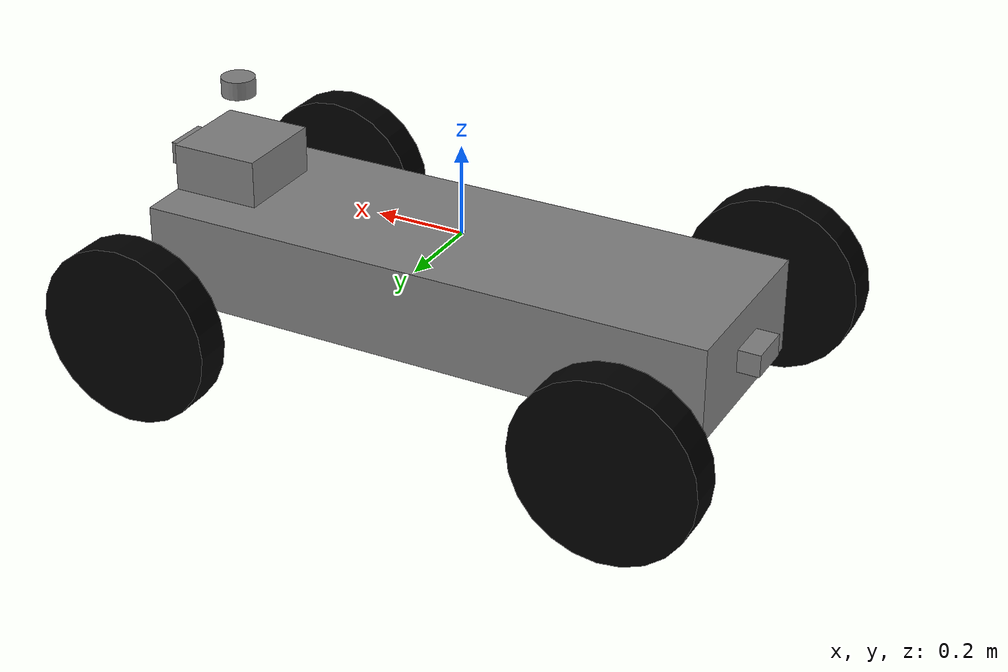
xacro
<?xml version="1.0"?>

<robot name="rake_umay" xmlns:xacro="http://www.ros.org/wiki/xacro">
  <!--xacro:include filename="$(find realsense2_description)/urdf/_d455.urdf.xacro" /-->

  <xacro:property name="PI" value="3.14159265"/>

  <xacro:property name="chassis_link_mass" value="100"/>
  <xacro:property name="chassis_link_width" value="0.428"/>
  <xacro:property name="chassis_link_depth" value="1.302"/>
  <xacro:property name="chassis_link_height" value="0.212"/>

  <xacro:property name="wheel_link_mass" value="5"/>
  <xacro:property name="wheel_link_radius" value="0.2"/>
  <xacro:property name="wheel_link_length" value="0.083"/>

  <xacro:property name="wheel_base_x" value="0.550"/>
  <xacro:property name="wheel_base_y" value="0.430"/>
  <xacro:property name="wheel_base_z" value="-0.167"/>

  <xacro:property name="wheel_travel" value="0.05"/>

  <xacro:property name="shock_z_offset" value="0.0655"/>
  <xacro:property name="shock_eff_limit" value="12.5106"/>
  <xacro:property name="shock_vel_limit" value="1000"/>

  <!-- 		UNITS
  		wheel_max_velocity: rad/s
  		wheel_max_effort: N*m
  -->
  <xacro:property name="wheel_max_effort" value="200.12766"/>
  <xacro:property name="wheel_max_velocity" value="500.8696"/>

  <xacro:property name="servo_stall_torque" value="200.649"/>
  <xacro:property name="servo_no_load_speed" value="40.553"/>

  <material name="silver">
    <color rgba="0.5 0.5 0.5 1"/>
  </material>

  <material name="black">
    <color rgba="0 0 0 1"/>
  </material>

  <xacro:macro name="null_inertial">
    <inertial>
      <mass value="0.001"/>
      <inertia ixx="0.001" ixy="0" ixz="0" iyy="0.001" iyz="0" izz="0.001"/>
    </inertial>
  </xacro:macro>

  <xacro:macro name="cuboid_inertial" params="width depth height mass *origin">
    <inertial>
      <xacro:insert_block name="origin"/>
      <mass value="${mass}"/>
      <inertia ixx="${mass * (depth * depth + height * height) / 12}" ixy="0" ixz="0" iyy="${mass * (width * width + height * height) / 12}" iyz="0" izz="${mass * (width * width + depth * depth) / 12}"/>
    </inertial>
  </xacro:macro>

  <xacro:macro name="cylinder_inertial" params="radius length mass">
    <inertial>
      <mass value="${mass}"/>
      <inertia ixx="${(1 / 12) * mass * (3 * (radius* radius) + (length * length))}" ixy="0" ixz="0" iyy="${(1 / 12) * mass * (3 * (radius* radius) + (length * length))}" iyz="0" izz="${(1 / 12) * mass * 3 * (radius* radius)}"/>
    </inertial>
  </xacro:macro>

  <xacro:macro name="shock" params="LR FR isLeft isFront child">
    <joint name="${FR}_${LR}_shock" type="prismatic">
      <parent link="chassis_link"/>
      <child link="${child}"/>
      <origin xyz="${isFront * wheel_base_x} ${isLeft * wheel_base_y} ${wheel_base_z}"/>
      <axis xyz="0 0 -1"/>
      <limit lower="${-wheel_travel / 2}" upper="${wheel_travel / 2}" effort="${shock_eff_limit}" velocity="${shock_vel_limit}"/>
    </joint>
    <transmission name="${FR}_${LR}_shock_trans">
      <type>transmission_interface/SimpleTransmission</type>
      <joint name="${FR}_${LR}_shock">
        <hardwareInterface>hardware_interface/EffortJointInterface</hardwareInterface>
      </joint>
      <actuator name="${FR}_${LR}_shock_act">
        <hardwareInterface>hardware_interface/EffortJointInterface</hardwareInterface>
        <mechanicalReduction>1</mechanicalReduction>
      </actuator>
    </transmission>
  </xacro:macro>

<!-- Wheel macro creates the crucial parts for the wheel -->

  <xacro:macro name="wheel" params="LR FR isLeft">
    <link name="${FR}_${LR}_axle_carrier">
      <xacro:null_inertial/>
    </link>
    <joint name="${FR}_${LR}_axle" type="continuous">
      <parent link="${FR}_${LR}_axle_carrier"/>
      <child link="${FR}_${LR}_wheel"/>
      <origin rpy="${PI/2} 0 0"/>
      <axis xyz="0 0 -1"/>
      <limit effort="${wheel_max_effort}" velocity="${wheel_max_velocity}"/>
    </joint>
    <transmission name="${FR}_${LR}_axle_trans">
      <type>transmission_interface/SimpleTransmission</type>
      <joint name="${FR}_${LR}_axle">
        <hardwareInterface>hardware_interface/VelocityJointInterface</hardwareInterface>
      </joint>
      <actuator name="${FR}_${LR}_axle_act">
        <hardwareInterface>hardware_interface/EffortJointInterface</hardwareInterface>
        <mechanicalReduction>1</mechanicalReduction>
      </actuator>
    </transmission>
    <link name="${FR}_${LR}_wheel">
      <visual>
      	<origin xyz="0 0 0"/>
        <geometry>
          <cylinder radius="${wheel_link_radius}" length="${wheel_link_length}"/>
        </geometry>
        <material name="black"/>
      </visual>
      <collision>
      	<origin xyz="0 0 0"/>
        <geometry>
          <cylinder radius="${wheel_link_radius}" length="${wheel_link_length}"/>
        </geometry>
      </collision>
      <xacro:cylinder_inertial radius="${wheel_link_radius}" length="${wheel_link_length}" mass="${wheel_link_mass}"/>
    </link>
    <gazebo reference="${FR}_${LR}_wheel">
      <material>Gazebo/Black</material>
    </gazebo>
  </xacro:macro>

<!-- Ackerman Wheel macro creates an extra steering joint -->

  <xacro:macro name="ackermann_wheel" params="LR FR isLeft isFront">
    <link name="${FR}_${LR}_steering_link">
      <xacro:null_inertial/>
    </link>
    <xacro:shock LR="${LR}" FR="${FR}" isLeft="${isLeft}" isFront="${isFront}" child="${FR}_${LR}_steering_link"/>
    <joint name="${FR}_${LR}_steering_joint" type="revolute">
      <parent link="${FR}_${LR}_steering_link"/>
      <child link="${FR}_${LR}_axle_carrier"/>
      <axis xyz="0 0 1"/>
      <limit lower="${-PI/3}" upper="${PI/3}" effort="${servo_stall_torque}" velocity="${servo_no_load_speed}"/>
    </joint>
    <transmission name="${FR}_${LR}_steering_trans">
      <type>transmission_interface/SimpleTransmission</type>
      <joint name="${FR}_${LR}_steering_joint">
        <hardwareInterface>hardware_interface/PositionJointInterface</hardwareInterface>
      </joint>
      <actuator name="${FR}_${LR}_steering_act">
        <hardwareInterface>hardware_interface/EffortJointInterface</hardwareInterface>
        <mechanicalReduction>1</mechanicalReduction>
      </actuator>
    </transmission>
    <xacro:wheel LR="${LR}" FR="${FR}" isLeft="${isLeft}"/>
  </xacro:macro>

  <link name="base_link">
    <visual>
      <geometry>
        <box size="0.01 0.01 0.01"/>
      </geometry>
      <material name="silver"/>
    </visual>
  </link>

  <xacro:include filename="$(find rake_umay_description)/urdf/rake_umay_sensors.urdf.xacro"/>

  <link name="chassis_link">
    <visual>
      <origin xyz="0 0 ${-chassis_link_height / 2}"/>
      <geometry>
        <box size="${chassis_link_depth} ${chassis_link_width} ${chassis_link_height}"/>
      </geometry>
      <material name="silver"/>
    </visual>
    <collision>
      <origin xyz="0 0 ${-chassis_link_height / 2}"/>
      <geometry>
        <box size="${chassis_link_depth} ${chassis_link_width} ${chassis_link_height}"/>
      </geometry>
    </collision>

    <xacro:cuboid_inertial width="${chassis_link_width}" depth="${chassis_link_depth}" height="${chassis_link_height}" mass="${chassis_link_mass}">
      <origin xyz="0 0 ${-chassis_link_height / 2}"/>
    </xacro:cuboid_inertial>
  </link>

  <gazebo reference="base_link">
    <material>Gazebo/Grey</material>
  </gazebo>

  <gazebo reference="chassis_link">
    <material>Gazebo/Grey</material>
  </gazebo>

  <joint name="base_link_to_chassis_link" type="fixed">
    <parent link="base_link"/>
    <child link="chassis_link"/>
  </joint>

  <xacro:ackermann_wheel LR="left" FR="front" isLeft="1" isFront="1"/>
  <xacro:ackermann_wheel LR="right" FR="front" isLeft="-1" isFront="1"/>
  <xacro:ackermann_wheel LR="left" FR="rear" isLeft="1" isFront="-1"/>
  <xacro:ackermann_wheel LR="right" FR="rear" isLeft="-1" isFront="-1"/>

  <gazebo>
    <plugin name="gazebo_ros2_control" filename="libgazebo_ros2_control.so"/>
    <ros>
      <namespace>/</namespace>
    </ros>
  </gazebo>
  <ros2_control name="rake_umay_system">
    <hardware>
      <plugin>gazebo_ros2_control/DefaultSystemInterface</plugin>
    </hardware>
    <joint name="front_left_axle">
      <command_interface name="velocity"/>
      <state_interface   name="velocity"/>
    </joint>
    <joint name="front_right_axle">
      <command_interface name="velocity"/>
      <state_interface   name="velocity"/>
    </joint>
    <joint name="front_left_steering_joint">
      <command_interface name="position"/>
      <state_interface   name="position"/>
    </joint>
    <joint name="front_right_steering_joint">
      <command_interface name="position"/>
      <state_interface   name="position"/>
    </joint>
    <!-- add other axle and steering joints as needed -->
  </ros2_control>
</robot>
<!--
front_left: wheel1 -1 -1
front_right: wheel2 -1 1
rear_left: wheel3  1 -1
rear_right: wheel4 1 1
->in swerve robot
-->

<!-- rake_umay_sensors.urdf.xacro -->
<robot xmlns:xacro="http://www.ros.org/wiki/xacro" name="rake_umay">

  <xacro:arg name="use_nominal_extrinsics" default="false"/>

  <xacro:property name="PI" value="3.14159265358979323"/>

  <xacro:property name="chassis_link_width" value="0.428"/>
  <xacro:property name="chassis_link_depth" value="1.302"/>
  <xacro:property name="chassis_link_height" value="0.212"/>

  <xacro:property name="wheel_link_mass" value="5"/>
  <xacro:property name="wheel_link_radius" value="0.2"/>
  <xacro:property name="wheel_link_length" value="0.083"/>

  <xacro:property name="wheel_base_x" value="0.550"/>
  <xacro:property name="wheel_base_y" value="0.430"/>
  <xacro:property name="wheel_base_z" value="-0.167"/>

  <xacro:property name="laser_link_mass" value="0.5"/>
  <xacro:property name="laser_link_radius" value="0.038"/>
  <xacro:property name="laser_link_length" value="0.041"/>

  <xacro:property name="camera_link_mass" value="0.5"/>
  <xacro:property name="camera_link_depth" value="0.05"/>
  <xacro:property name="camera_link_height" value="0.05"/>
  <xacro:property name="camera_link_width" value="0.1" />

  <xacro:property name="front_box_depth" value="0.2"/>
  <xacro:property name="front_box_height" value="0.106"/>
  <xacro:property name="front_box_width" value="0.215" />
  <xacro:property name="front_box_mass" value="4.0"/>

  <!--xacro:include filename="$(find rake_umay_description)/urdf/test_d455_camera.urdf.xacro" /-->

  <link name="laser_link">
    <visual>
      <geometry>
        <cylinder length="${laser_link_length}" radius="${laser_link_radius}"/>
      </geometry>
      <material name="silver"/>
    </visual>
    <collision>
      <geometry>
        <cylinder length="${laser_link_length}" radius="${laser_link_radius}"/>
      </geometry>
    </collision>
    <inertial>
      <mass value="${laser_link_mass}"/>
      <inertia ixx="${(1/12)*laser_link_mass*(3*laser_link_radius**2 + laser_link_length**2)}" ixy="0.0" ixz="0.0" iyy="${(1/12)*laser_link_mass*(3*laser_link_radius**2 + laser_link_length**2)}" iyz="0.0" izz="${(1/12)*laser_link_mass*(laser_link_radius**2)}"/>
    </inertial>
  </link>

  <joint name="base_to_laser" type="fixed">
    <parent link="base_link"/>
    <child link="laser_link"/>
    <origin xyz="${wheel_base_x} 0  ${chassis_link_height/2 + laser_link_length/2 + 0.1}" rpy="0.0 0.0 0.0"/>
  </joint>

<!-- UMAY'S SENSORS -->

  <link name="imu_link"/>

  <joint name="base_to_imu" type="fixed">
    <parent link="base_link"/>
    <child link="imu_link"/>
    <origin xyz="0.0 0.0 0.0" rpy="0.0 0.0 0.0"/>
  </joint>

  <link name="gps_link"/>
  <joint name="base_to_gps" type="fixed">
    <parent link="base_link"/>
    <child link="gps_link"/>
    <origin xyz="0.0 0.0 ${chassis_link_height}" rpy="0.0 0.0 0.0"/>
  </joint>

  <link name="front_box_link">
    <visual>
      <geometry>
        <box size="${front_box_depth} ${front_box_width} ${front_box_height}"/>
      </geometry>
      <material name="silver"/>
    </visual>
    <collision>
      <geometry>
        <box size="${front_box_depth} ${front_box_width} ${front_box_height}"/>
      </geometry>
    </collision>
    <xacro:cuboid_inertial width="${front_box_width}" depth="${front_box_depth}" height="${front_box_height}" mass="${front_box_mass}">
      <origin xyz="0 0 0" rpy="0 0 0"/>
    </xacro:cuboid_inertial>
  </link>

  <joint name="base_front_box_joint" type="fixed">
    <parent link="base_link"/>
    <child link="front_box_link"/>
    <origin xyz="${chassis_link_depth / 2 - front_box_depth / 2} 0 ${front_box_height / 2}" rpy="0 0 0"/>
  </joint>

  <link name="back_detection_camera_link">
    <visual>
      <geometry>
        <box size="${camera_link_depth} ${camera_link_width} ${camera_link_height}"/>
      </geometry>
      <material name="silver"/>
    </visual>
    <collision>
      <geometry>
        <box size="${camera_link_depth} ${camera_link_width} ${camera_link_height}"/>
      </geometry>
    </collision>
    <xacro:cuboid_inertial width="${camera_link_width}" depth="${camera_link_depth}" height="${camera_link_height}" mass="${camera_link_mass}">
      <origin xyz="0 0 0" rpy="0 0 0"/>
    </xacro:cuboid_inertial>
  </link>

  <joint name="base_back_detection_camera_joint" type="fixed">
    <parent link="base_link"/>
    <child link="back_detection_camera_link"/>
    <origin xyz="${-chassis_link_depth / 2  - camera_link_depth / 2} 0 ${-chassis_link_height / 2}" rpy="0 0 ${PI}"/>
  </joint>

  <link name="front_detection_camera_link">
    <visual>
      <geometry>
        <box size="${camera_link_depth} ${camera_link_width} ${camera_link_height}"/>
      </geometry>
      <material name="silver"/>
    </visual>
    <collision>
      <geometry>
        <box size="${camera_link_depth} ${camera_link_width} ${camera_link_height}"/>
      </geometry>
    </collision>
    <xacro:cuboid_inertial width="${camera_link_width}" depth="${camera_link_depth}" height="${camera_link_height}" mass="${camera_link_mass}">
      <origin xyz="0 0 0" rpy="0 0 0"/>
    </xacro:cuboid_inertial>
  </link>

  <joint name="base_front_detection_camera_joint" type="fixed">
    <parent link="base_link"/>
    <child link="front_detection_camera_link"/>
    <origin xyz="${chassis_link_depth / 2 + camera_link_depth / 2} 0 ${front_box_height / 2}" rpy="0 0 0"/>
  </joint>

<!--Front Operator Camera-->
<gazebo reference="front_detection_camera_link">
  <sensor type="camera" name="front_detection_camera">
    <update_rate>15.0</update_rate>
    <camera name="front_detection_camera">
      <horizontal_fov>1.3962634</horizontal_fov>
      <image>
        <width>800</width>
        <height>800</height>
        <format>R8G8B8</format>
      </image>
      <clip>
        <near>0.02</near>
        <far>300</far>
      </clip>
      <noise>
        <type>gaussian</type>
        <mean>0.0</mean>
        <stddev>0.007</stddev>
      </noise>
    </camera>
    <visualize>true</visualize>
    <plugin name="camera_controller" filename="libgazebo_ros_camera.so">
      <alwaysOn>true</alwaysOn>
      <updateRate>0.0</updateRate>
      <cameraName>front_detection_camera</cameraName>
      <imageTopicName>front_detection_camera_raw_image</imageTopicName>
      <cameraInfoTopicName>front_detection_camera_info</cameraInfoTopicName>
      <frameName>front_detection_camera_link</frameName>
      <hackBaseline>0.07</hackBaseline>
      <distortionK1>0.0</distortionK1>
      <distortionK2>0.0</distortionK2>
      <distortionK3>0.0</distortionK3>
      <distortionT1>0.0</distortionT1>
      <distortionT2>0.0</distortionT2>
    </plugin>
  </sensor>
</gazebo>

<!-- Back Detection Camera -->
<gazebo reference="back_detection_camera_link">
  <sensor type="camera" name="back_detection_camera">
    <update_rate>15.0</update_rate>
    <camera name="back_detection_camera">
      <horizontal_fov>1.3962634</horizontal_fov>
      <image>
        <width>800</width>
        <height>800</height>
        <format>R8G8B8</format>
      </image>
      <clip>
        <near>0.02</near>
        <far>300</far>
      </clip>
      <noise>
        <type>gaussian</type>
        <mean>0.0</mean>
        <stddev>0.007</stddev>
      </noise>
    </camera>
    <visualize>true</visualize>
    <plugin name="camera_controller" filename="libgazebo_ros_camera.so">
      <alwaysOn>true</alwaysOn>
      <updateRate>0.0</updateRate>
      <cameraName>back_detection_camera</cameraName>
      <imageTopicName>back_detection_camera_raw_image</imageTopicName>
      <cameraInfoTopicName>back_detection_camera_info</cameraInfoTopicName>
      <frameName>back_detection_camera_link</frameName>
      <hackBaseline>0.07</hackBaseline>
      <distortionK1>0.0</distortionK1>
      <distortionK2>0.0</distortionK2>
      <distortionK3>0.0</distortionK3>
      <distortionT1>0.0</distortionT1>
      <distortionT2>0.0</distortionT2>
    </plugin>
  </sensor>
</gazebo>

<!-- LIDARs -->
  <gazebo reference="laser_link">
    <sensor type="ray" name="head_rplidar_sensor">
      <pose>0 0 0.06 0 0 0</pose>
      <visualize>false</visualize>
      <update_rate>30</update_rate>
      <ray>
        <scan>
          <horizontal>
            <samples>720</samples>
            <resolution>0.3</resolution>
            <min_angle>-3.14159265</min_angle>
            <max_angle>3.14159265</max_angle>
          </horizontal>
        </scan>
        <range>
          <min>0.2</min>
          <max>12.00</max>
          <resolution>0.2</resolution>
        </range>
        <noise>
          <type>gaussian</type>
          <mean>0.0</mean>
          <stddev>0.01</stddev>
        </noise>
      </ray>
      <plugin name="gazebo_ros_head_rplidar_controller" filename="libgazebo_ros_laser.so">
        <topicName>scan</topicName>
        <frameName>laser_link</frameName>
      </plugin>
    </sensor>
  </gazebo>

  <gazebo reference="imu_link">
    <gravity>true</gravity>
    <sensor name="imu_sensor" type="imu">
      <always_on>true</always_on>
      <update_rate>100</update_rate>
      <visualize>true</visualize>
      <topic>default_topic</topic>
      <plugin filename="libgazebo_ros_imu_sensor.so" name="imu_plugin">
        <topicName>imu/data</topicName>
        <bodyName>imu_link</bodyName>
        <updateRateHZ>10.0</updateRateHZ>
        <gaussianNoise>0.0</gaussianNoise>
        <xyzOffset>0 0 0</xyzOffset>
        <rpyOffset>0 0 0</rpyOffset>
        <frameName>imu_link</frameName>
      </plugin>
      <pose>0 0 0 0 0 0</pose>
    </sensor>
  </gazebo>

  <!-- GAZEBO GPS SENSOR PLUGIN -->

  <gazebo>
    <plugin name="gazebo_ros_gps" filename="libhector_gazebo_ros_gps.so">
      <updateRate>4.0</updateRate>
      <bodyName>gps_link</bodyName>
      <frameId>gps_link</frameId>
      <topicName>gps/fix</topicName>
      <velocityTopicName>/gps/fix_velocity</velocityTopicName>
      <referenceLatitude>43.50089451</referenceLatitude>
      <referenceLongitude>-80.54642133</referenceLongitude>
      <referenceHeading>90</referenceHeading>
      <referenceAltitude>10</referenceAltitude>
      <offset>0 0 0</offset>
      <drift>0.001 0.001 0.001</drift>
      <gaussianNoise>0.05 0.05 0.05</gaussianNoise>
      <velocityDrift>0.001 0.001 0.001</velocityDrift>
      <velocityGaussianNoise>0.5 0.5 0.5</velocityGaussianNoise>
    </plugin>
  </gazebo>

</robot>
